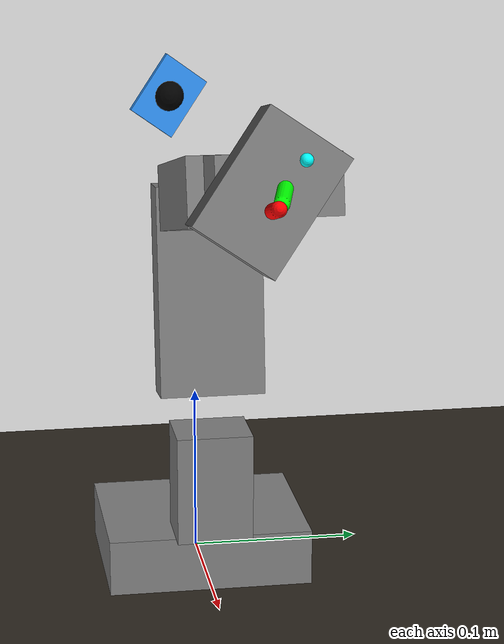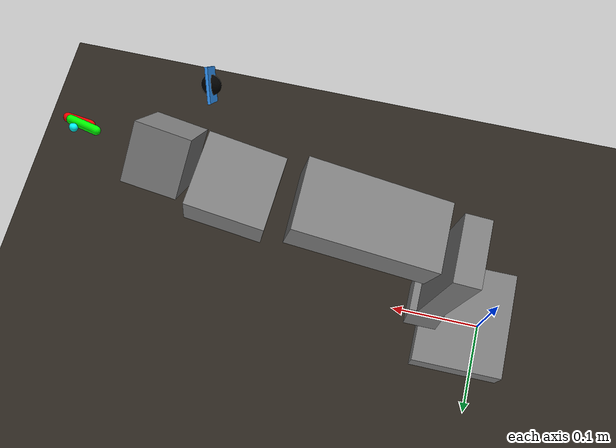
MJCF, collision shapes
<?xml version='1.0' encoding='utf-8'?>
<mujoco model="so102_calibrated_optimized">
  <asset>
    <texture type="skybox" builtin="gradient" rgb1="0.3 0.5 0.7" rgb2="0 0 0" width="512" height="3072" />
    <texture type="2d" name="groundplane" builtin="checker" mark="edge" rgb1="0.2 0.18 0.14" rgb2="0.15 0.13 0.11" markrgb="0.25 0.22 0.17" width="1" height="1" />
    <material name="groundplane" texture="groundplane" texuniform="true" texrepeat="5 5" reflectance="0.2" rgba="1 1 1 1" />
  </asset>

  <compiler angle="radian" meshdir="assets" autolimits="true" />

  <option timestep="0.008" iterations="100" tolerance="1e-10" />

  <default>
    <geom solref="0.005 1" solimp="0.95 0.99 0.001" condim="1" />
    <default class="so101_new_calib">
      <joint damping="1" frictionloss="0.1" armature="0.005" />
      <position kp="50" />
      <default class="visual">
        <geom type="mesh" contype="0" conaffinity="0" group="2" />
      </default>
      <default class="collision">
        <geom group="3" type="box" contype="1" conaffinity="1" friction="1.5 0.2 0.01" solref="0.02 1" solimp="0.995 0.999 0.0005" condim="6" />
      </default>
    </default>
  </default>

  <default>
    <default class="sts3215">
      <geom contype="0" conaffinity="0" />
      <joint damping="2.0" frictionloss="0.052" armature="0.1" />
      <position kp="17.8" />
    </default>
    <default class="backlash">
      <joint damping="0.01" frictionloss="0" armature="0.01" limited="true" range="-0.008726646259971648 0.008726646259971648" />
    </default>
  </default>

  <asset>
    <mesh file="waveshare_mounting_plate_so101_v2.stl" />
    <mesh file="sts3215_03a_v1.stl" />
    <mesh file="motor_holder_so101_base_v1.stl" />
    <mesh file="wrist_roll_follower_so101_v1.stl" />
    <mesh file="moving_jaw_so101_v1.stl" />
    <mesh file="base_motor_holder_so101_v1.stl" />
    <mesh file="upper_arm_so101_v1.stl" />
    <mesh file="wrist_roll_pitch_so101_v2.stl" />
    <mesh file="under_arm_so101_v1.stl" />
    <mesh file="rotation_pitch_so101_v1.stl" />
    <mesh file="motor_holder_so101_wrist_v1.stl" />
    <mesh file="sts3215_03a_no_horn_v1.stl" />
    <mesh file="base_so101_v2.stl" />
    <mesh file="Board_1.stl" scale="0.001 0.001 0.001" />
    <mesh name="SO102-Cam4sim" file="SO102-Cam4sim.stl" scale="0.001 0.001 0.001" />

    <material name="base_motor_holder_so101_v1_material" rgba="1 1 1 1" />
    <material name="base_so101_v2_material" rgba="1 1 1 1" />
    <material name="sts3215_03a_v1_material" rgba="0.1 0.1 0.1 1" />
    <material name="waveshare_mounting_plate_so101_v2_material" rgba="1 1 1 1" />
    <material name="motor_holder_so101_base_v1_material" rgba="1 1 1 1" />
    <material name="rotation_pitch_so101_v1_material" rgba="1 1 1 1" />
    <material name="upper_arm_so101_v1_material" rgba="1 1 1 1" />
    <material name="under_arm_so101_v1_material" rgba="1 1 1 1" />
    <material name="motor_holder_so101_wrist_v1_material" rgba="1 1 1 1" />
    <material name="sts3215_03a_no_horn_v1_material" rgba="0.1 0.1 0.1 1.0" />
    <material name="wrist_roll_pitch_so101_v2_material" rgba="1 1 1 1" />
    <material name="wrist_roll_follower_so101_v1_material" rgba="1 1 1 1" />
    <material name="wrist_cam_plate_material" rgba="0.2 0.6 1.0 1" />
    <material name="moving_jaw_so101_v1_material" rgba="1 1 1 1" />
    <material name="Board_1_material" rgba="1 1 1 1" />
  </asset>

  <actuator>
    <position class="sts3215" name="shoulder_pan" joint="shoulder_pan" forcerange="-1.5 1.5" ctrlrange="-1.91986 1.91986" />
    <position class="sts3215" name="shoulder_lift" joint="shoulder_lift" forcerange="-1.5 1.5" ctrlrange="-1.74533 1.74533" />
    <position class="sts3215" name="elbow_flex" joint="elbow_flex" forcerange="-1.5 1.5" ctrlrange="-1.69 1.69" />
    <position class="sts3215" name="wrist_flex" joint="wrist_flex" forcerange="-1.5 1.5" ctrlrange="-1.65806 1.65806" />
    <position class="sts3215" name="wrist_roll" joint="wrist_roll" forcerange="-1.5 1.5" ctrlrange="-2.74385 2.84121" />
    <position class="sts3215" name="gripper" joint="gripper" forcerange="-1.5 1.5" ctrlrange="0 1.7" />
  </actuator>

  <equality />

  <keyframe>
    <key time="0" qpos="0 0 0.0055 1 0 0 0 0 -1.745 1.69 1.3264 1.02588 0" qvel="0 0 0 0 0 0 0 0 0 0 0 0" ctrl="0 0 0 0 0 0" />
  </keyframe>

  <worldbody>
    <geom name="floor" type="plane" size="1 1 0.1" material="groundplane" contype="1" conaffinity="1" friction="1.0 0.01 0.0005" solref="0.02 1" solimp="0.9 0.95 0.003" condim="6" />

    <body name="base" pos="0 0 0.0055" quat="1 0 0 0" childclass="so101_new_calib">
      <joint type="free" name="base_free" />
      <inertial pos="0.0137179 -5.19711e-05 0.0334843" mass="25.0" fullinertia="0.000114686 0.000136117 0.000130364 -4.59787e-07 4.97151e-06 9.75275e-08" />

      <geom type="mesh" class="visual" pos="-0.00636471 -9.94414e-05 -0.0024" quat="0.5 0.5 0.5 0.5" mesh="base_motor_holder_so101_v1" material="base_motor_holder_so101_v1_material" />
      <geom type="mesh" class="visual" pos="-0.00636471 -8.97657e-09 -0.0024" quat="0.5 0.5 0.5 0.5" mesh="base_so101_v2" material="base_so101_v2_material" />
      <geom type="mesh" class="visual" pos="0.0263353 -8.97657e-09 0.0437" quat="1 -2.85511e-16 -9.64433e-17 6.12908e-16" mesh="sts3215_03a_v1" material="sts3215_03a_v1_material" />
      <geom type="mesh" class="visual" pos="-0.0309827 -0.000199441 0.0474" quat="0.5 0.5 0.5 0.5" mesh="waveshare_mounting_plate_so101_v2" material="waveshare_mounting_plate_so101_v2_material" />

      <geom name="base_col" class="collision" type="box" size="0.05 0.06 0.017" pos="0.02 0 0.01" />

      <site group="3" name="baseframe" pos="8.67362e-19 9.55596e-18 3.46945e-18" quat="1 -8.17396e-19 3.78392e-17 2.22045e-16" />

      <body name="shoulder" pos="0.0388353 -8.97657e-09 0.0624" quat="0.000000 0.000000 -1.000000 -0.000000">
        <joint axis="0 0 1" name="shoulder_pan" type="hinge" range="-1.9198621771937616 1.9198621771937634" class="sts3215" />
        <inertial pos="-0.0307604 -1.66727e-05 -0.0252713" mass="0.100006" fullinertia="8.3759e-05 8.10403e-05 2.39783e-05 7.55525e-08 -1.16342e-06 1.54663e-07" />

        <geom type="mesh" class="visual" pos="-0.0303992 0.000422241 -0.0417" quat="0.5 0.5 0.5 -0.5" mesh="sts3215_03a_v1" material="sts3215_03a_v1_material" />
        <geom type="mesh" class="visual" pos="-0.0675992 -0.000177759 0.0158499" quat="0.5 0.5 -0.5 0.5" mesh="motor_holder_so101_base_v1" material="motor_holder_so101_base_v1_material" />
        <geom type="mesh" class="visual" pos="0.0122008 2.22413e-05 0.0464" quat="0.707107 -0.707107 -0 8.3163e-34" mesh="rotation_pitch_so101_v1" material="rotation_pitch_so101_v1_material" />

        <geom name="shoulder_col" class="collision" type="box" size="0.018 0.022 0.032" pos="-0.03 0 0" />

        <body name="upper_arm" pos="-0.0303992 -0.0182778 -0.0542" quat="0.468543 -0.468543 -0.529591 -0.529591">
          <joint axis="0 0 1" name="shoulder_lift" type="hinge" range="-1.7453292519943224 1.7453292519943366" class="sts3215" />
          <inertial pos="-0.0898471 -0.00838224 0.0184089" mass="0.103" fullinertia="4.08002e-05 0.000147318 0.000142487 -1.97819e-05 -4.03016e-08 8.97326e-09" />

          <geom type="mesh" class="visual" pos="-0.11257 -0.0155 0.0187" quat="4.56308e-16 -0.707107 0.707107 -1.37383e-16" mesh="sts3215_03a_v1" material="sts3215_03a_v1_material" />
          <geom type="mesh" class="visual" pos="-0.065085 0.012 0.0182" quat="0 1 0 0" mesh="upper_arm_so101_v1" material="upper_arm_so101_v1_material" />

          <geom name="upper_arm_col" class="collision" type="box" size="0.06 0.012 0.03" pos="-0.06 0 0.018" />

          <body name="lower_arm" pos="-0.11257 -0.028 1.73763e-16" quat="0.751346 -0.000000 -0.000000 0.659909">
            <joint axis="0 0 1" name="elbow_flex" type="hinge" range="-1.69 1.69" class="sts3215" />
            <inertial pos="-0.0980701 0.00324376 0.0182831" mass="0.104" fullinertia="2.87438e-05 0.000159844 0.00014529 7.41152e-06 1.26409e-06 -4.90188e-08" />

            <geom type="mesh" class="visual" pos="-0.0648499 -0.032 0.0182" quat="0 1 0 0" mesh="under_arm_so101_v1" material="under_arm_so101_v1_material" />
            <geom type="mesh" class="visual" pos="-0.0648499 -0.032 0.018" quat="3.92687e-16 -1 -1.9186e-15 -6.38378e-16" mesh="motor_holder_so101_wrist_v1" material="motor_holder_so101_wrist_v1_material" />
            <geom type="mesh" class="visual" pos="-0.1224 0.0052 0.0187" quat="7.21645e-16 1.56949e-15 1 -3.33067e-16" mesh="sts3215_03a_v1" material="sts3215_03a_v1_material" />

            <geom name="lower_arm_col" class="collision" type="box" size="0.06 0.018 0.03" pos="-0.06 0.003 0.018" />

            <body name="wrist" pos="-0.1349 0.0052 3.62355e-17" quat="0.720152 0.018155 -0.018858 -0.693322">
              <joint axis="0 0 1" name="wrist_flex" type="hinge" range="-1.6580628494556928 1.6580627293335335" class="sts3215" />
              <inertial pos="-0.000103312 -0.0386143 0.0281156" mass="0.079" fullinertia="3.68263e-05 2.5391e-05 2.1e-05 1.7893e-08 -5.28128e-08 3.6412e-06" />

              <geom type="mesh" class="visual" pos="8.32667e-17 -0.0424 0.0306" quat="0.5 0.5 0.5 -0.5" mesh="sts3215_03a_no_horn_v1" material="sts3215_03a_no_horn_v1_material" />
              <geom type="mesh" class="visual" pos="0 -0.028 0.0181" quat="0.5 -0.5 -0.5 -0.5" mesh="wrist_roll_pitch_so101_v2" material="wrist_roll_pitch_so101_v2_material" />

              <geom name="wrist_col" class="collision" type="box" size="0.015 0.03 0.03" pos="0 -0.03 0.025" />

              <body name="gripper" pos="5.55112e-17 -0.0611 0.0181" quat="-0.212631 0.212631 0.674380 0.674380">
                <joint axis="0 0 1" name="wrist_roll" type="hinge" range="-2.7438472969992493 2.841206309382605" class="sts3215" />
                <inertial pos="0.000213627 0.000245138 -0.025187" mass="0.087" fullinertia="2.75087e-05 4.33657e-05 3.45059e-05 -3.35241e-07 -5.7352e-06 -5.17847e-08" />

                <geom type="mesh" class="visual" pos="0.0077 0.0001 -0.0234" quat="0.707107 -0.707107 1.66015e-15 6.45094e-15" mesh="sts3215_03a_v1" material="sts3215_03a_v1_material" />
                <geom type="mesh" class="visual" pos="8.32667e-17 -0.000218214 0.000949706" quat="0 1 0 0" mesh="SO102-Cam4sim" material="wrist_roll_follower_so101_v1_material" />
                <geom name="wrist_cam_plate" type="box" class="visual" pos="0.01 -0.06 -0.005" size="0.015 0.012 0.001" material="wrist_cam_plate_material" quat="0.983255 0.182235 0.000000 0.000000" />

                <geom name="gripper_base_col" class="collision" type="box" size="0.032 0.022 0.02" pos="-0.003 0 -0.025" />

                <site name="wrist_aperture" type="sphere" pos="0.01 -0.06 -0.005" size="0.007" rgba="0 0 0 1" />
                <camera name="wrist" pos="0.01 -0.06 -0.005" quat="0 0 -0.182235 0.983255" fovy="60" mode="fixed" />
                <site group="3" name="gripperframe" pos="-0.0079 -0.000218121 -0.0981274" quat="0.707107 -0 0.707107 -2.37788e-17" />

                <body name="touch_point1" pos="-0.011 0 -0.093">
                  <inertial pos="0 0 0" mass="0.001" fullinertia="1e-08 1e-08 1e-08 0 0 0" />
                  <geom name="touch_point1_geom" type="sphere" class="visual" pos="0 0 0" size="0.003" rgba="1 0 0 1" />
                  <geom name="touch_point1_geom_collision" type="capsule" class="collision" pos="0 0 0" size="0.0035 0.008" rgba="1 0 0 1" quat="0.999049 0.000000 -0.043620 0.000000" solref="0.01 1" solimp="0.999 0.9999 0.00001" friction="1.5 0.8 0.08" condim="6" />
                  <geom name="gripper_mid_point" type="sphere" class="visual" pos="0.025 0 0.005" size="0.003" rgba="0 1 1 1" />
                  <site name="gripper_mid_point" type="sphere" pos="0.025 0 0.005" size="0.003" rgba="1 0 0 1" group="4" />
                </body>

                <body name="moving_jaw_so101_v1" pos="0.0202 0.0188 -0.0234" quat="0.707086 0.707086 -0.005424 -0.005424">
                  <joint axis="0 0 1" name="gripper" type="hinge" range="-0.23 1.62" class="sts3215" />
                  <inertial pos="-0.00157495 -0.0300244 0.0192755" mass="0.012" fullinertia="6.61427e-06 1.89032e-06 5.28738e-06 -3.19807e-07 -5.90717e-09 -1.09945e-07" />

                  <geom type="mesh" class="visual" pos="-5.55112e-17 -5.55112e-17 0.0189" quat="1 -0 3.00524e-16 -0.11" mesh="moving_jaw_so101_v1" material="moving_jaw_so101_v1_material" />

                  <body name="touch_point2" pos="-0.024 -0.064 0.019">
                    <inertial pos="0 0 0" mass="0.001" fullinertia="1e-08 1e-08 1e-08 0 0 0" />
                    <geom name="touch_point2_geom" type="sphere" class="visual" pos="0 0 0" size="0.003" rgba="0 1 0 1" />
                    <geom name="touch_point2_geom_collision" type="capsule" class="collision" pos="0 0 0" size="0.0035 0.011" rgba="0 1 0 1" quat="0.653283 -0.521336 0.477716 0.270599" solref="0.01 1" solimp="0.999 0.9999 0.00001" friction="1.5 0.8 0.08" condim="6" />
                  </body>
                </body>
              </body>
            </body>
          </body>
        </body>
      </body>
    </body>
  </worldbody>
</mujoco>
